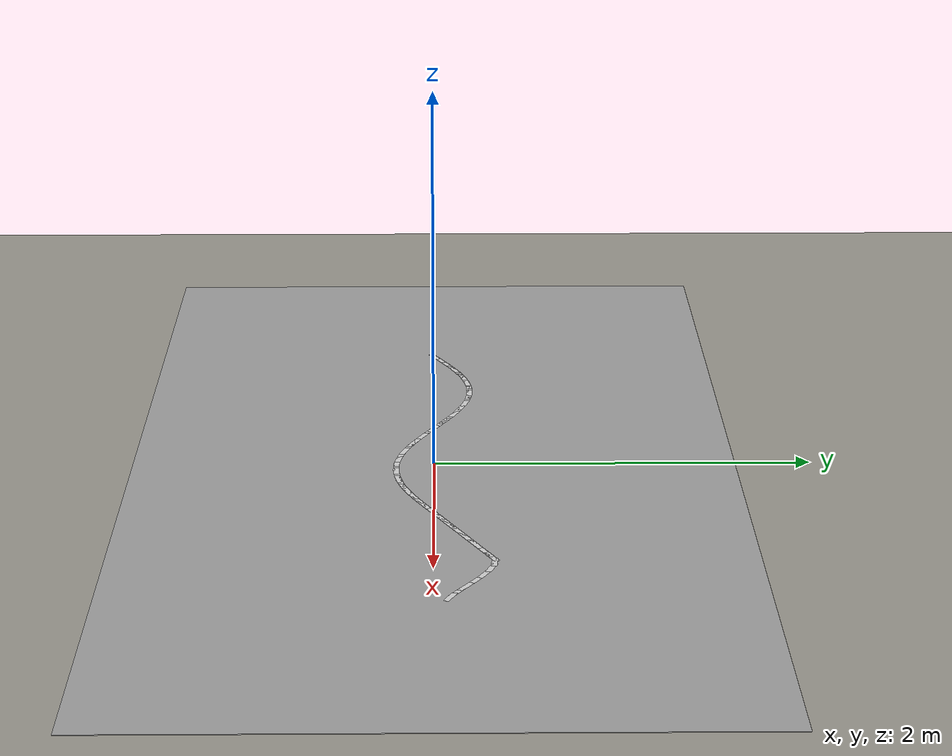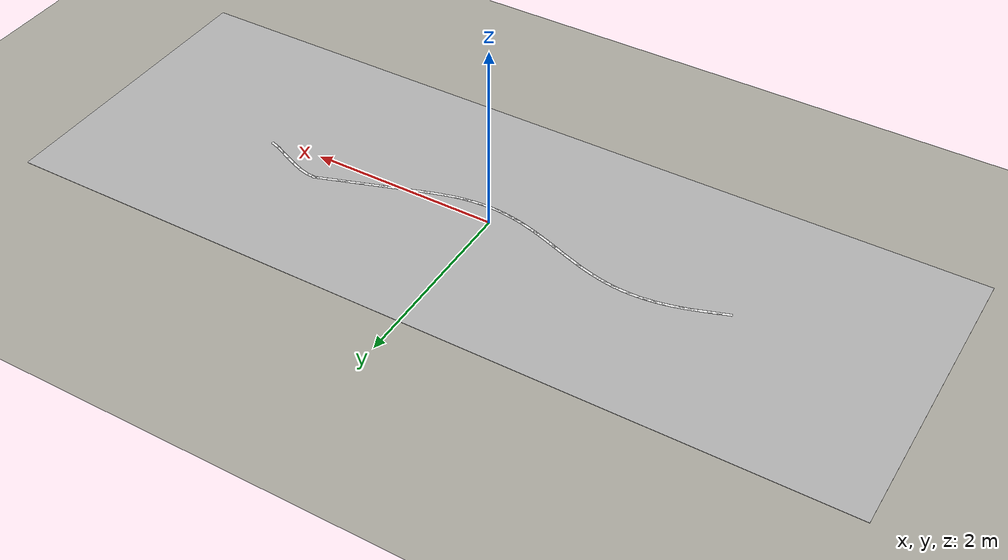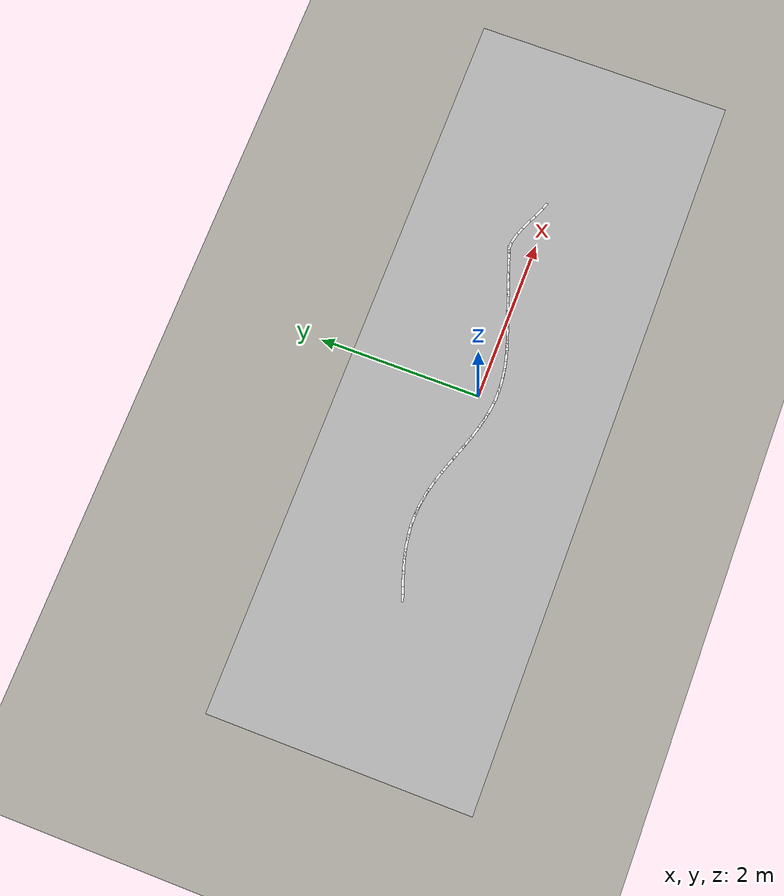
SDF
<?xml version="1.0" ?>
<sdf version="1.6">
  <world name="seam_world_texture_half_width_mid_straight">
    <gravity>0 0 -9.8</gravity>

    <physics name="default_physics" type="ode">
      <max_step_size>0.001</max_step_size>
      <real_time_factor>1.0</real_time_factor>
      <real_time_update_rate>1000</real_time_update_rate>
    </physics>

    <scene>
      <ambient>0.62 0.62 0.60 1</ambient>
      <background>0.72 0.72 0.72 1</background>
      <shadows>true</shadows>
    </scene>

    <light name="main_light" type="directional">
      <cast_shadows>true</cast_shadows>
      <pose>0 0 8 0 0 0</pose>
      <diffuse>0.86 0.86 0.82 1</diffuse>
      <specular>0.16 0.16 0.16 1</specular>
      <direction>-0.35 0.18 -0.92</direction>
    </light>

    <model name="ground_plane">
      <static>true</static>
      <link name="ground_link">
        <collision name="ground_collision">
          <geometry>
            <plane>
              <normal>0 0 1</normal>
              <size>20 20</size>
            </plane>
          </geometry>
          <surface>
            <friction>
              <ode>
                <mu>100</mu>
                <mu2>100</mu2>
              </ode>
            </friction>
          </surface>
        </collision>
        <visual name="ground_visual">
          <geometry>
            <plane>
              <normal>0 0 1</normal>
              <size>20 20</size>
            </plane>
          </geometry>
          <material>
            <ambient>0.73 0.72 0.68 1</ambient>
            <diffuse>0.73 0.72 0.68 1</diffuse>
            <specular>0.04 0.04 0.04 1</specular>
          </material>
        </visual>
      </link>
    </model>

    <model name="seam_background_surface">
      <static>true</static>
      <link name="bg_surface_link">
        <visual name="bg_clean_surface_visual">
          <pose>0 0 0.002 0 0 0</pose>
          <cast_shadows>false</cast_shadows>
          <geometry>
            <plane>
              <normal>0 0 1</normal>
              <size>9.0 3.2</size>
            </plane>
          </geometry>
          <material>
            <script>
              <uri>file:///home/bn/bsnew/catkin_ws/src/nanoomni_description/materials/scripts/seam_video.material</uri>
              <uri>file:///home/bn/bsnew/catkin_ws/src/nanoomni_description/materials/textures</uri>
              <name>NanoOmni/CleanBackgroundSurface</name>
            </script>
            <ambient>0.76 0.76 0.76 1</ambient>
            <diffuse>0.76 0.76 0.76 1</diffuse>
            <specular>0.015 0.015 0.015 1</specular>
          </material>
        </visual>
      </link>
    </model>

    <model name="mid_straight_weld_texture_path">
      <static>true</static>
      <link name="curve_visual_link">
        <visual name="weld_curve_segment_00">
          <pose>-2.500 0.000 0.004 0 0 0.346</pose>
          <cast_shadows>false</cast_shadows>
          <geometry>
            <plane>
              <normal>0 0 1</normal>
              <size>0.14 0.03</size>
            </plane>
          </geometry>
          <material>
            <script>
              <uri>file:///home/bn/bsnew/catkin_ws/src/nanoomni_description/materials/scripts/seam_video.material</uri>
              <uri>file:///home/bn/bsnew/catkin_ws/src/nanoomni_description/materials/textures</uri>
              <name>NanoOmni/SeamCurvePatch01</name>
            </script>
            <ambient>1 1 1 1</ambient>
            <diffuse>1 1 1 1</diffuse>
            <specular>0.05 0.05 0.05 1</specular>
          </material>
        </visual>
        <visual name="weld_curve_segment_01">
          <pose>-2.417 0.030 0.004 0 0 0.342</pose>
          <cast_shadows>false</cast_shadows>
          <geometry>
            <plane>
              <normal>0 0 1</normal>
              <size>0.14 0.03</size>
            </plane>
          </geometry>
          <material>
            <script>
              <uri>file:///home/bn/bsnew/catkin_ws/src/nanoomni_description/materials/scripts/seam_video.material</uri>
              <uri>file:///home/bn/bsnew/catkin_ws/src/nanoomni_description/materials/textures</uri>
              <name>NanoOmni/SeamCurvePatch02</name>
            </script>
            <ambient>1 1 1 1</ambient>
            <diffuse>1 1 1 1</diffuse>
            <specular>0.05 0.05 0.05 1</specular>
          </material>
        </visual>
        <visual name="weld_curve_segment_02">
          <pose>-2.333 0.059 0.004 0 0 0.331</pose>
          <cast_shadows>false</cast_shadows>
          <geometry>
            <plane>
              <normal>0 0 1</normal>
              <size>0.14 0.03</size>
            </plane>
          </geometry>
          <material>
            <script>
              <uri>file:///home/bn/bsnew/catkin_ws/src/nanoomni_description/materials/scripts/seam_video.material</uri>
              <uri>file:///home/bn/bsnew/catkin_ws/src/nanoomni_description/materials/textures</uri>
              <name>NanoOmni/SeamCurvePatch03</name>
            </script>
            <ambient>1 1 1 1</ambient>
            <diffuse>1 1 1 1</diffuse>
            <specular>0.05 0.05 0.05 1</specular>
          </material>
        </visual>
        <visual name="weld_curve_segment_03">
          <pose>-2.250 0.087 0.004 0 0 0.313</pose>
          <cast_shadows>false</cast_shadows>
          <geometry>
            <plane>
              <normal>0 0 1</normal>
              <size>0.14 0.03</size>
            </plane>
          </geometry>
          <material>
            <script>
              <uri>file:///home/bn/bsnew/catkin_ws/src/nanoomni_description/materials/scripts/seam_video.material</uri>
              <uri>file:///home/bn/bsnew/catkin_ws/src/nanoomni_description/materials/textures</uri>
              <name>NanoOmni/SeamCurvePatch04</name>
            </script>
            <ambient>1 1 1 1</ambient>
            <diffuse>1 1 1 1</diffuse>
            <specular>0.05 0.05 0.05 1</specular>
          </material>
        </visual>
        <visual name="weld_curve_segment_04">
          <pose>-2.167 0.113 0.004 0 0 0.289</pose>
          <cast_shadows>false</cast_shadows>
          <geometry>
            <plane>
              <normal>0 0 1</normal>
              <size>0.14 0.03</size>
            </plane>
          </geometry>
          <material>
            <script>
              <uri>file:///home/bn/bsnew/catkin_ws/src/nanoomni_description/materials/scripts/seam_video.material</uri>
              <uri>file:///home/bn/bsnew/catkin_ws/src/nanoomni_description/materials/textures</uri>
              <name>NanoOmni/SeamCurvePatch05</name>
            </script>
            <ambient>1 1 1 1</ambient>
            <diffuse>1 1 1 1</diffuse>
            <specular>0.05 0.05 0.05 1</specular>
          </material>
        </visual>
        <visual name="weld_curve_segment_05">
          <pose>-2.083 0.136 0.004 0 0 0.258</pose>
          <cast_shadows>false</cast_shadows>
          <geometry>
            <plane>
              <normal>0 0 1</normal>
              <size>0.14 0.03</size>
            </plane>
          </geometry>
          <material>
            <script>
              <uri>file:///home/bn/bsnew/catkin_ws/src/nanoomni_description/materials/scripts/seam_video.material</uri>
              <uri>file:///home/bn/bsnew/catkin_ws/src/nanoomni_description/materials/textures</uri>
              <name>NanoOmni/SeamCurvePatch06</name>
            </script>
            <ambient>1 1 1 1</ambient>
            <diffuse>1 1 1 1</diffuse>
            <specular>0.05 0.05 0.05 1</specular>
          </material>
        </visual>
        <visual name="weld_curve_segment_06">
          <pose>-2.000 0.157 0.004 0 0 0.220</pose>
          <cast_shadows>false</cast_shadows>
          <geometry>
            <plane>
              <normal>0 0 1</normal>
              <size>0.14 0.03</size>
            </plane>
          </geometry>
          <material>
            <script>
              <uri>file:///home/bn/bsnew/catkin_ws/src/nanoomni_description/materials/scripts/seam_video.material</uri>
              <uri>file:///home/bn/bsnew/catkin_ws/src/nanoomni_description/materials/textures</uri>
              <name>NanoOmni/SeamCurvePatch07</name>
            </script>
            <ambient>1 1 1 1</ambient>
            <diffuse>1 1 1 1</diffuse>
            <specular>0.05 0.05 0.05 1</specular>
          </material>
        </visual>
        <visual name="weld_curve_segment_07">
          <pose>-1.917 0.173 0.004 0 0 0.177</pose>
          <cast_shadows>false</cast_shadows>
          <geometry>
            <plane>
              <normal>0 0 1</normal>
              <size>0.14 0.03</size>
            </plane>
          </geometry>
          <material>
            <script>
              <uri>file:///home/bn/bsnew/catkin_ws/src/nanoomni_description/materials/scripts/seam_video.material</uri>
              <uri>file:///home/bn/bsnew/catkin_ws/src/nanoomni_description/materials/textures</uri>
              <name>NanoOmni/SeamCurvePatch08</name>
            </script>
            <ambient>1 1 1 1</ambient>
            <diffuse>1 1 1 1</diffuse>
            <specular>0.05 0.05 0.05 1</specular>
          </material>
        </visual>
        <visual name="weld_curve_segment_08">
          <pose>-1.833 0.186 0.004 0 0 0.130</pose>
          <cast_shadows>false</cast_shadows>
          <geometry>
            <plane>
              <normal>0 0 1</normal>
              <size>0.14 0.03</size>
            </plane>
          </geometry>
          <material>
            <script>
              <uri>file:///home/bn/bsnew/catkin_ws/src/nanoomni_description/materials/scripts/seam_video.material</uri>
              <uri>file:///home/bn/bsnew/catkin_ws/src/nanoomni_description/materials/textures</uri>
              <name>NanoOmni/SeamCurvePatch09</name>
            </script>
            <ambient>1 1 1 1</ambient>
            <diffuse>1 1 1 1</diffuse>
            <specular>0.05 0.05 0.05 1</specular>
          </material>
        </visual>
        <visual name="weld_curve_segment_09">
          <pose>-1.750 0.195 0.004 0 0 0.079</pose>
          <cast_shadows>false</cast_shadows>
          <geometry>
            <plane>
              <normal>0 0 1</normal>
              <size>0.14 0.03</size>
            </plane>
          </geometry>
          <material>
            <script>
              <uri>file:///home/bn/bsnew/catkin_ws/src/nanoomni_description/materials/scripts/seam_video.material</uri>
              <uri>file:///home/bn/bsnew/catkin_ws/src/nanoomni_description/materials/textures</uri>
              <name>NanoOmni/SeamCurvePatch10</name>
            </script>
            <ambient>1 1 1 1</ambient>
            <diffuse>1 1 1 1</diffuse>
            <specular>0.05 0.05 0.05 1</specular>
          </material>
        </visual>
        <visual name="weld_curve_segment_10">
          <pose>-1.667 0.199 0.004 0 0 0.025</pose>
          <cast_shadows>false</cast_shadows>
          <geometry>
            <plane>
              <normal>0 0 1</normal>
              <size>0.14 0.03</size>
            </plane>
          </geometry>
          <material>
            <script>
              <uri>file:///home/bn/bsnew/catkin_ws/src/nanoomni_description/materials/scripts/seam_video.material</uri>
              <uri>file:///home/bn/bsnew/catkin_ws/src/nanoomni_description/materials/textures</uri>
              <name>NanoOmni/SeamCurvePatch11</name>
            </script>
            <ambient>1 1 1 1</ambient>
            <diffuse>1 1 1 1</diffuse>
            <specular>0.05 0.05 0.05 1</specular>
          </material>
        </visual>
        <visual name="weld_curve_segment_11">
          <pose>-1.583 0.199 0.004 0 0 -0.028</pose>
          <cast_shadows>false</cast_shadows>
          <geometry>
            <plane>
              <normal>0 0 1</normal>
              <size>0.14 0.03</size>
            </plane>
          </geometry>
          <material>
            <script>
              <uri>file:///home/bn/bsnew/catkin_ws/src/nanoomni_description/materials/scripts/seam_video.material</uri>
              <uri>file:///home/bn/bsnew/catkin_ws/src/nanoomni_description/materials/textures</uri>
              <name>NanoOmni/SeamCurvePatch01</name>
            </script>
            <ambient>1 1 1 1</ambient>
            <diffuse>1 1 1 1</diffuse>
            <specular>0.05 0.05 0.05 1</specular>
          </material>
        </visual>
        <visual name="weld_curve_segment_12">
          <pose>-1.500 0.195 0.004 0 0 -0.082</pose>
          <cast_shadows>false</cast_shadows>
          <geometry>
            <plane>
              <normal>0 0 1</normal>
              <size>0.14 0.03</size>
            </plane>
          </geometry>
          <material>
            <script>
              <uri>file:///home/bn/bsnew/catkin_ws/src/nanoomni_description/materials/scripts/seam_video.material</uri>
              <uri>file:///home/bn/bsnew/catkin_ws/src/nanoomni_description/materials/textures</uri>
              <name>NanoOmni/SeamCurvePatch02</name>
            </script>
            <ambient>1 1 1 1</ambient>
            <diffuse>1 1 1 1</diffuse>
            <specular>0.05 0.05 0.05 1</specular>
          </material>
        </visual>
        <visual name="weld_curve_segment_13">
          <pose>-1.417 0.186 0.004 0 0 -0.132</pose>
          <cast_shadows>false</cast_shadows>
          <geometry>
            <plane>
              <normal>0 0 1</normal>
              <size>0.14 0.03</size>
            </plane>
          </geometry>
          <material>
            <script>
              <uri>file:///home/bn/bsnew/catkin_ws/src/nanoomni_description/materials/scripts/seam_video.material</uri>
              <uri>file:///home/bn/bsnew/catkin_ws/src/nanoomni_description/materials/textures</uri>
              <name>NanoOmni/SeamCurvePatch03</name>
            </script>
            <ambient>1 1 1 1</ambient>
            <diffuse>1 1 1 1</diffuse>
            <specular>0.05 0.05 0.05 1</specular>
          </material>
        </visual>
        <visual name="weld_curve_segment_14">
          <pose>-1.333 0.173 0.004 0 0 -0.180</pose>
          <cast_shadows>false</cast_shadows>
          <geometry>
            <plane>
              <normal>0 0 1</normal>
              <size>0.14 0.03</size>
            </plane>
          </geometry>
          <material>
            <script>
              <uri>file:///home/bn/bsnew/catkin_ws/src/nanoomni_description/materials/scripts/seam_video.material</uri>
              <uri>file:///home/bn/bsnew/catkin_ws/src/nanoomni_description/materials/textures</uri>
              <name>NanoOmni/SeamCurvePatch04</name>
            </script>
            <ambient>1 1 1 1</ambient>
            <diffuse>1 1 1 1</diffuse>
            <specular>0.05 0.05 0.05 1</specular>
          </material>
        </visual>
        <visual name="weld_curve_segment_15">
          <pose>-1.250 0.156 0.004 0 0 -0.222</pose>
          <cast_shadows>false</cast_shadows>
          <geometry>
            <plane>
              <normal>0 0 1</normal>
              <size>0.14 0.03</size>
            </plane>
          </geometry>
          <material>
            <script>
              <uri>file:///home/bn/bsnew/catkin_ws/src/nanoomni_description/materials/scripts/seam_video.material</uri>
              <uri>file:///home/bn/bsnew/catkin_ws/src/nanoomni_description/materials/textures</uri>
              <name>NanoOmni/SeamCurvePatch05</name>
            </script>
            <ambient>1 1 1 1</ambient>
            <diffuse>1 1 1 1</diffuse>
            <specular>0.05 0.05 0.05 1</specular>
          </material>
        </visual>
        <visual name="weld_curve_segment_16">
          <pose>-1.167 0.135 0.004 0 0 -0.259</pose>
          <cast_shadows>false</cast_shadows>
          <geometry>
            <plane>
              <normal>0 0 1</normal>
              <size>0.14 0.03</size>
            </plane>
          </geometry>
          <material>
            <script>
              <uri>file:///home/bn/bsnew/catkin_ws/src/nanoomni_description/materials/scripts/seam_video.material</uri>
              <uri>file:///home/bn/bsnew/catkin_ws/src/nanoomni_description/materials/textures</uri>
              <name>NanoOmni/SeamCurvePatch06</name>
            </script>
            <ambient>1 1 1 1</ambient>
            <diffuse>1 1 1 1</diffuse>
            <specular>0.05 0.05 0.05 1</specular>
          </material>
        </visual>
        <visual name="weld_curve_segment_17">
          <pose>-1.083 0.112 0.004 0 0 -0.290</pose>
          <cast_shadows>false</cast_shadows>
          <geometry>
            <plane>
              <normal>0 0 1</normal>
              <size>0.14 0.03</size>
            </plane>
          </geometry>
          <material>
            <script>
              <uri>file:///home/bn/bsnew/catkin_ws/src/nanoomni_description/materials/scripts/seam_video.material</uri>
              <uri>file:///home/bn/bsnew/catkin_ws/src/nanoomni_description/materials/textures</uri>
              <name>NanoOmni/SeamCurvePatch07</name>
            </script>
            <ambient>1 1 1 1</ambient>
            <diffuse>1 1 1 1</diffuse>
            <specular>0.05 0.05 0.05 1</specular>
          </material>
        </visual>
        <visual name="weld_curve_segment_18">
          <pose>-1.000 0.085 0.004 0 0 -0.315</pose>
          <cast_shadows>false</cast_shadows>
          <geometry>
            <plane>
              <normal>0 0 1</normal>
              <size>0.14 0.03</size>
            </plane>
          </geometry>
          <material>
            <script>
              <uri>file:///home/bn/bsnew/catkin_ws/src/nanoomni_description/materials/scripts/seam_video.material</uri>
              <uri>file:///home/bn/bsnew/catkin_ws/src/nanoomni_description/materials/textures</uri>
              <name>NanoOmni/SeamCurvePatch08</name>
            </script>
            <ambient>1 1 1 1</ambient>
            <diffuse>1 1 1 1</diffuse>
            <specular>0.05 0.05 0.05 1</specular>
          </material>
        </visual>
        <visual name="weld_curve_segment_19">
          <pose>-0.917 0.057 0.004 0 0 -0.332</pose>
          <cast_shadows>false</cast_shadows>
          <geometry>
            <plane>
              <normal>0 0 1</normal>
              <size>0.14 0.03</size>
            </plane>
          </geometry>
          <material>
            <script>
              <uri>file:///home/bn/bsnew/catkin_ws/src/nanoomni_description/materials/scripts/seam_video.material</uri>
              <uri>file:///home/bn/bsnew/catkin_ws/src/nanoomni_description/materials/textures</uri>
              <name>NanoOmni/SeamCurvePatch09</name>
            </script>
            <ambient>1 1 1 1</ambient>
            <diffuse>1 1 1 1</diffuse>
            <specular>0.05 0.05 0.05 1</specular>
          </material>
        </visual>
        <visual name="weld_curve_segment_20">
          <pose>-0.833 0.028 0.004 0 0 -0.342</pose>
          <cast_shadows>false</cast_shadows>
          <geometry>
            <plane>
              <normal>0 0 1</normal>
              <size>0.14 0.03</size>
            </plane>
          </geometry>
          <material>
            <script>
              <uri>file:///home/bn/bsnew/catkin_ws/src/nanoomni_description/materials/scripts/seam_video.material</uri>
              <uri>file:///home/bn/bsnew/catkin_ws/src/nanoomni_description/materials/textures</uri>
              <name>NanoOmni/SeamCurvePatch10</name>
            </script>
            <ambient>1 1 1 1</ambient>
            <diffuse>1 1 1 1</diffuse>
            <specular>0.05 0.05 0.05 1</specular>
          </material>
        </visual>
        <visual name="weld_curve_segment_21">
          <pose>-0.750 -0.002 0.004 0 0 -0.346</pose>
          <cast_shadows>false</cast_shadows>
          <geometry>
            <plane>
              <normal>0 0 1</normal>
              <size>0.14 0.03</size>
            </plane>
          </geometry>
          <material>
            <script>
              <uri>file:///home/bn/bsnew/catkin_ws/src/nanoomni_description/materials/scripts/seam_video.material</uri>
              <uri>file:///home/bn/bsnew/catkin_ws/src/nanoomni_description/materials/textures</uri>
              <name>NanoOmni/SeamCurvePatch11</name>
            </script>
            <ambient>1 1 1 1</ambient>
            <diffuse>1 1 1 1</diffuse>
            <specular>0.05 0.05 0.05 1</specular>
          </material>
        </visual>
        <visual name="weld_curve_segment_22">
          <pose>-0.667 -0.032 0.004 0 0 -0.342</pose>
          <cast_shadows>false</cast_shadows>
          <geometry>
            <plane>
              <normal>0 0 1</normal>
              <size>0.14 0.03</size>
            </plane>
          </geometry>
          <material>
            <script>
              <uri>file:///home/bn/bsnew/catkin_ws/src/nanoomni_description/materials/scripts/seam_video.material</uri>
              <uri>file:///home/bn/bsnew/catkin_ws/src/nanoomni_description/materials/textures</uri>
              <name>NanoOmni/SeamCurvePatch01</name>
            </script>
            <ambient>1 1 1 1</ambient>
            <diffuse>1 1 1 1</diffuse>
            <specular>0.05 0.05 0.05 1</specular>
          </material>
        </visual>
        <visual name="weld_curve_segment_23">
          <pose>-0.583 -0.061 0.004 0 0 -0.330</pose>
          <cast_shadows>false</cast_shadows>
          <geometry>
            <plane>
              <normal>0 0 1</normal>
              <size>0.14 0.03</size>
            </plane>
          </geometry>
          <material>
            <script>
              <uri>file:///home/bn/bsnew/catkin_ws/src/nanoomni_description/materials/scripts/seam_video.material</uri>
              <uri>file:///home/bn/bsnew/catkin_ws/src/nanoomni_description/materials/textures</uri>
              <name>NanoOmni/SeamCurvePatch02</name>
            </script>
            <ambient>1 1 1 1</ambient>
            <diffuse>1 1 1 1</diffuse>
            <specular>0.05 0.05 0.05 1</specular>
          </material>
        </visual>
        <visual name="weld_curve_segment_24">
          <pose>-0.500 -0.089 0.004 0 0 -0.312</pose>
          <cast_shadows>false</cast_shadows>
          <geometry>
            <plane>
              <normal>0 0 1</normal>
              <size>0.14 0.03</size>
            </plane>
          </geometry>
          <material>
            <script>
              <uri>file:///home/bn/bsnew/catkin_ws/src/nanoomni_description/materials/scripts/seam_video.material</uri>
              <uri>file:///home/bn/bsnew/catkin_ws/src/nanoomni_description/materials/textures</uri>
              <name>NanoOmni/SeamCurvePatch03</name>
            </script>
            <ambient>1 1 1 1</ambient>
            <diffuse>1 1 1 1</diffuse>
            <specular>0.05 0.05 0.05 1</specular>
          </material>
        </visual>
        <visual name="weld_curve_segment_25">
          <pose>-0.417 -0.114 0.004 0 0 -0.287</pose>
          <cast_shadows>false</cast_shadows>
          <geometry>
            <plane>
              <normal>0 0 1</normal>
              <size>0.14 0.03</size>
            </plane>
          </geometry>
          <material>
            <script>
              <uri>file:///home/bn/bsnew/catkin_ws/src/nanoomni_description/materials/scripts/seam_video.material</uri>
              <uri>file:///home/bn/bsnew/catkin_ws/src/nanoomni_description/materials/textures</uri>
              <name>NanoOmni/SeamCurvePatch04</name>
            </script>
            <ambient>1 1 1 1</ambient>
            <diffuse>1 1 1 1</diffuse>
            <specular>0.05 0.05 0.05 1</specular>
          </material>
        </visual>
        <visual name="weld_curve_segment_26">
          <pose>-0.333 -0.138 0.004 0 0 -0.256</pose>
          <cast_shadows>false</cast_shadows>
          <geometry>
            <plane>
              <normal>0 0 1</normal>
              <size>0.14 0.03</size>
            </plane>
          </geometry>
          <material>
            <script>
              <uri>file:///home/bn/bsnew/catkin_ws/src/nanoomni_description/materials/scripts/seam_video.material</uri>
              <uri>file:///home/bn/bsnew/catkin_ws/src/nanoomni_description/materials/textures</uri>
              <name>NanoOmni/SeamCurvePatch05</name>
            </script>
            <ambient>1 1 1 1</ambient>
            <diffuse>1 1 1 1</diffuse>
            <specular>0.05 0.05 0.05 1</specular>
          </material>
        </visual>
        <visual name="weld_curve_segment_27">
          <pose>-0.250 -0.158 0.004 0 0 -0.218</pose>
          <cast_shadows>false</cast_shadows>
          <geometry>
            <plane>
              <normal>0 0 1</normal>
              <size>0.14 0.03</size>
            </plane>
          </geometry>
          <material>
            <script>
              <uri>file:///home/bn/bsnew/catkin_ws/src/nanoomni_description/materials/scripts/seam_video.material</uri>
              <uri>file:///home/bn/bsnew/catkin_ws/src/nanoomni_description/materials/textures</uri>
              <name>NanoOmni/SeamCurvePatch06</name>
            </script>
            <ambient>1 1 1 1</ambient>
            <diffuse>1 1 1 1</diffuse>
            <specular>0.05 0.05 0.05 1</specular>
          </material>
        </visual>
        <visual name="weld_curve_segment_28">
          <pose>-0.167 -0.174 0.004 0 0 -0.175</pose>
          <cast_shadows>false</cast_shadows>
          <geometry>
            <plane>
              <normal>0 0 1</normal>
              <size>0.14 0.03</size>
            </plane>
          </geometry>
          <material>
            <script>
              <uri>file:///home/bn/bsnew/catkin_ws/src/nanoomni_description/materials/scripts/seam_video.material</uri>
              <uri>file:///home/bn/bsnew/catkin_ws/src/nanoomni_description/materials/textures</uri>
              <name>NanoOmni/SeamCurvePatch07</name>
            </script>
            <ambient>1 1 1 1</ambient>
            <diffuse>1 1 1 1</diffuse>
            <specular>0.05 0.05 0.05 1</specular>
          </material>
        </visual>
        <visual name="weld_curve_segment_29">
          <pose>-0.083 -0.187 0.004 0 0 -0.127</pose>
          <cast_shadows>false</cast_shadows>
          <geometry>
            <plane>
              <normal>0 0 1</normal>
              <size>0.14 0.03</size>
            </plane>
          </geometry>
          <material>
            <script>
              <uri>file:///home/bn/bsnew/catkin_ws/src/nanoomni_description/materials/scripts/seam_video.material</uri>
              <uri>file:///home/bn/bsnew/catkin_ws/src/nanoomni_description/materials/textures</uri>
              <name>NanoOmni/SeamCurvePatch08</name>
            </script>
            <ambient>1 1 1 1</ambient>
            <diffuse>1 1 1 1</diffuse>
            <specular>0.05 0.05 0.05 1</specular>
          </material>
        </visual>
        <visual name="weld_curve_segment_30">
          <pose>0.000 -0.196 0.004 0 0 -0.076</pose>
          <cast_shadows>false</cast_shadows>
          <geometry>
            <plane>
              <normal>0 0 1</normal>
              <size>0.14 0.03</size>
            </plane>
          </geometry>
          <material>
            <script>
              <uri>file:///home/bn/bsnew/catkin_ws/src/nanoomni_description/materials/scripts/seam_video.material</uri>
              <uri>file:///home/bn/bsnew/catkin_ws/src/nanoomni_description/materials/textures</uri>
              <name>NanoOmni/SeamCurvePatch09</name>
            </script>
            <ambient>1 1 1 1</ambient>
            <diffuse>1 1 1 1</diffuse>
            <specular>0.05 0.05 0.05 1</specular>
          </material>
        </visual>
        <visual name="weld_curve_segment_31">
          <pose>0.083 -0.200 0.004 0 0 -0.022</pose>
          <cast_shadows>false</cast_shadows>
          <geometry>
            <plane>
              <normal>0 0 1</normal>
              <size>0.14 0.03</size>
            </plane>
          </geometry>
          <material>
            <script>
              <uri>file:///home/bn/bsnew/catkin_ws/src/nanoomni_description/materials/scripts/seam_video.material</uri>
              <uri>file:///home/bn/bsnew/catkin_ws/src/nanoomni_description/materials/textures</uri>
              <name>NanoOmni/SeamCurvePatch10</name>
            </script>
            <ambient>1 1 1 1</ambient>
            <diffuse>1 1 1 1</diffuse>
            <specular>0.05 0.05 0.05 1</specular>
          </material>
        </visual>
        <visual name="weld_curve_segment_32">
          <pose>0.167 -0.199 0.004 0 0 0.031</pose>
          <cast_shadows>false</cast_shadows>
          <geometry>
            <plane>
              <normal>0 0 1</normal>
              <size>0.14 0.03</size>
            </plane>
          </geometry>
          <material>
            <script>
              <uri>file:///home/bn/bsnew/catkin_ws/src/nanoomni_description/materials/scripts/seam_video.material</uri>
              <uri>file:///home/bn/bsnew/catkin_ws/src/nanoomni_description/materials/textures</uri>
              <name>NanoOmni/SeamCurvePatch11</name>
            </script>
            <ambient>1 1 1 1</ambient>
            <diffuse>1 1 1 1</diffuse>
            <specular>0.05 0.05 0.05 1</specular>
          </material>
        </visual>
        <visual name="weld_curve_segment_33">
          <pose>0.250 -0.194 0.004 0 0 0.085</pose>
          <cast_shadows>false</cast_shadows>
          <geometry>
            <plane>
              <normal>0 0 1</normal>
              <size>0.14 0.03</size>
            </plane>
          </geometry>
          <material>
            <script>
              <uri>file:///home/bn/bsnew/catkin_ws/src/nanoomni_description/materials/scripts/seam_video.material</uri>
              <uri>file:///home/bn/bsnew/catkin_ws/src/nanoomni_description/materials/textures</uri>
              <name>NanoOmni/SeamCurvePatch01</name>
            </script>
            <ambient>1 1 1 1</ambient>
            <diffuse>1 1 1 1</diffuse>
            <specular>0.05 0.05 0.05 1</specular>
          </material>
        </visual>
        <visual name="weld_curve_segment_34">
          <pose>0.333 -0.185 0.004 0 0 0.135</pose>
          <cast_shadows>false</cast_shadows>
          <geometry>
            <plane>
              <normal>0 0 1</normal>
              <size>0.14 0.03</size>
            </plane>
          </geometry>
          <material>
            <script>
              <uri>file:///home/bn/bsnew/catkin_ws/src/nanoomni_description/materials/scripts/seam_video.material</uri>
              <uri>file:///home/bn/bsnew/catkin_ws/src/nanoomni_description/materials/textures</uri>
              <name>NanoOmni/SeamCurvePatch02</name>
            </script>
            <ambient>1 1 1 1</ambient>
            <diffuse>1 1 1 1</diffuse>
            <specular>0.05 0.05 0.05 1</specular>
          </material>
        </visual>
        <visual name="weld_curve_segment_35">
          <pose>0.417 -0.172 0.004 0 0 0.182</pose>
          <cast_shadows>false</cast_shadows>
          <geometry>
            <plane>
              <normal>0 0 1</normal>
              <size>0.14 0.03</size>
            </plane>
          </geometry>
          <material>
            <script>
              <uri>file:///home/bn/bsnew/catkin_ws/src/nanoomni_description/materials/scripts/seam_video.material</uri>
              <uri>file:///home/bn/bsnew/catkin_ws/src/nanoomni_description/materials/textures</uri>
              <name>NanoOmni/SeamCurvePatch03</name>
            </script>
            <ambient>1 1 1 1</ambient>
            <diffuse>1 1 1 1</diffuse>
            <specular>0.05 0.05 0.05 1</specular>
          </material>
        </visual>
        <visual name="weld_curve_segment_36">
          <pose>0.500 -0.155 0.004 0 0 0.225</pose>
          <cast_shadows>false</cast_shadows>
          <geometry>
            <plane>
              <normal>0 0 1</normal>
              <size>0.14 0.03</size>
            </plane>
          </geometry>
          <material>
            <script>
              <uri>file:///home/bn/bsnew/catkin_ws/src/nanoomni_description/materials/scripts/seam_video.material</uri>
              <uri>file:///home/bn/bsnew/catkin_ws/src/nanoomni_description/materials/textures</uri>
              <name>NanoOmni/SeamCurvePatch04</name>
            </script>
            <ambient>1 1 1 1</ambient>
            <diffuse>1 1 1 1</diffuse>
            <specular>0.05 0.05 0.05 1</specular>
          </material>
        </visual>
        <visual name="weld_curve_segment_37">
          <pose>0.583 -0.134 0.004 0 0 0.261</pose>
          <cast_shadows>false</cast_shadows>
          <geometry>
            <plane>
              <normal>0 0 1</normal>
              <size>0.14 0.03</size>
            </plane>
          </geometry>
          <material>
            <script>
              <uri>file:///home/bn/bsnew/catkin_ws/src/nanoomni_description/materials/scripts/seam_video.material</uri>
              <uri>file:///home/bn/bsnew/catkin_ws/src/nanoomni_description/materials/textures</uri>
              <name>NanoOmni/SeamCurvePatch05</name>
            </script>
            <ambient>1 1 1 1</ambient>
            <diffuse>1 1 1 1</diffuse>
            <specular>0.05 0.05 0.05 1</specular>
          </material>
        </visual>
        <visual name="weld_curve_segment_38">
          <pose>0.667 -0.110 0.004 0 0 0.292</pose>
          <cast_shadows>false</cast_shadows>
          <geometry>
            <plane>
              <normal>0 0 1</normal>
              <size>0.14 0.03</size>
            </plane>
          </geometry>
          <material>
            <script>
              <uri>file:///home/bn/bsnew/catkin_ws/src/nanoomni_description/materials/scripts/seam_video.material</uri>
              <uri>file:///home/bn/bsnew/catkin_ws/src/nanoomni_description/materials/textures</uri>
              <name>NanoOmni/SeamCurvePatch06</name>
            </script>
            <ambient>1 1 1 1</ambient>
            <diffuse>1 1 1 1</diffuse>
            <specular>0.05 0.05 0.05 1</specular>
          </material>
        </visual>
        <visual name="weld_curve_segment_39">
          <pose>0.750 -0.084 0.004 0 0 0.316</pose>
          <cast_shadows>false</cast_shadows>
          <geometry>
            <plane>
              <normal>0 0 1</normal>
              <size>0.14 0.03</size>
            </plane>
          </geometry>
          <material>
            <script>
              <uri>file:///home/bn/bsnew/catkin_ws/src/nanoomni_description/materials/scripts/seam_video.material</uri>
              <uri>file:///home/bn/bsnew/catkin_ws/src/nanoomni_description/materials/textures</uri>
              <name>NanoOmni/SeamCurvePatch07</name>
            </script>
            <ambient>1 1 1 1</ambient>
            <diffuse>1 1 1 1</diffuse>
            <specular>0.05 0.05 0.05 1</specular>
          </material>
        </visual>
        <visual name="weld_curve_segment_40">
          <pose>0.833 -0.056 0.004 0 0 0.333</pose>
          <cast_shadows>false</cast_shadows>
          <geometry>
            <plane>
              <normal>0 0 1</normal>
              <size>0.14 0.03</size>
            </plane>
          </geometry>
          <material>
            <script>
              <uri>file:///home/bn/bsnew/catkin_ws/src/nanoomni_description/materials/scripts/seam_video.material</uri>
              <uri>file:///home/bn/bsnew/catkin_ws/src/nanoomni_description/materials/textures</uri>
              <name>NanoOmni/SeamCurvePatch08</name>
            </script>
            <ambient>1 1 1 1</ambient>
            <diffuse>1 1 1 1</diffuse>
            <specular>0.05 0.05 0.05 1</specular>
          </material>
        </visual>
        <visual name="weld_curve_segment_41">
          <pose>0.909 -0.030 0.004 0 0 0.333</pose>
          <cast_shadows>false</cast_shadows>
          <geometry>
            <plane>
              <normal>0 0 1</normal>
              <size>0.14 0.03</size>
            </plane>
          </geometry>
          <material>
            <script>
              <uri>file:///home/bn/bsnew/catkin_ws/src/nanoomni_description/materials/scripts/seam_video.material</uri>
              <uri>file:///home/bn/bsnew/catkin_ws/src/nanoomni_description/materials/textures</uri>
              <name>NanoOmni/SeamCurvePatch09</name>
            </script>
            <ambient>1 1 1 1</ambient>
            <diffuse>1 1 1 1</diffuse>
            <specular>0.05 0.05 0.05 1</specular>
          </material>
        </visual>
        <visual name="weld_curve_segment_42">
          <pose>0.986 -0.003 0.004 0 0 0.333</pose>
          <cast_shadows>false</cast_shadows>
          <geometry>
            <plane>
              <normal>0 0 1</normal>
              <size>0.14 0.03</size>
            </plane>
          </geometry>
          <material>
            <script>
              <uri>file:///home/bn/bsnew/catkin_ws/src/nanoomni_description/materials/scripts/seam_video.material</uri>
              <uri>file:///home/bn/bsnew/catkin_ws/src/nanoomni_description/materials/textures</uri>
              <name>NanoOmni/SeamCurvePatch10</name>
            </script>
            <ambient>1 1 1 1</ambient>
            <diffuse>1 1 1 1</diffuse>
            <specular>0.05 0.05 0.05 1</specular>
          </material>
        </visual>
        <visual name="weld_curve_segment_43">
          <pose>1.062 0.023 0.004 0 0 0.333</pose>
          <cast_shadows>false</cast_shadows>
          <geometry>
            <plane>
              <normal>0 0 1</normal>
              <size>0.14 0.03</size>
            </plane>
          </geometry>
          <material>
            <script>
              <uri>file:///home/bn/bsnew/catkin_ws/src/nanoomni_description/materials/scripts/seam_video.material</uri>
              <uri>file:///home/bn/bsnew/catkin_ws/src/nanoomni_description/materials/textures</uri>
              <name>NanoOmni/SeamCurvePatch11</name>
            </script>
            <ambient>1 1 1 1</ambient>
            <diffuse>1 1 1 1</diffuse>
            <specular>0.05 0.05 0.05 1</specular>
          </material>
        </visual>
        <visual name="weld_curve_segment_44">
          <pose>1.138 0.050 0.004 0 0 0.333</pose>
          <cast_shadows>false</cast_shadows>
          <geometry>
            <plane>
              <normal>0 0 1</normal>
              <size>0.14 0.03</size>
            </plane>
          </geometry>
          <material>
            <script>
              <uri>file:///home/bn/bsnew/catkin_ws/src/nanoomni_description/materials/scripts/seam_video.material</uri>
              <uri>file:///home/bn/bsnew/catkin_ws/src/nanoomni_description/materials/textures</uri>
              <name>NanoOmni/SeamCurvePatch01</name>
            </script>
            <ambient>1 1 1 1</ambient>
            <diffuse>1 1 1 1</diffuse>
            <specular>0.05 0.05 0.05 1</specular>
          </material>
        </visual>
        <visual name="weld_curve_segment_45">
          <pose>1.215 0.076 0.004 0 0 0.333</pose>
          <cast_shadows>false</cast_shadows>
          <geometry>
            <plane>
              <normal>0 0 1</normal>
              <size>0.14 0.03</size>
            </plane>
          </geometry>
          <material>
            <script>
              <uri>file:///home/bn/bsnew/catkin_ws/src/nanoomni_description/materials/scripts/seam_video.material</uri>
              <uri>file:///home/bn/bsnew/catkin_ws/src/nanoomni_description/materials/textures</uri>
              <name>NanoOmni/SeamCurvePatch02</name>
            </script>
            <ambient>1 1 1 1</ambient>
            <diffuse>1 1 1 1</diffuse>
            <specular>0.05 0.05 0.05 1</specular>
          </material>
        </visual>
        <visual name="weld_curve_segment_46">
          <pose>1.291 0.102 0.004 0 0 0.333</pose>
          <cast_shadows>false</cast_shadows>
          <geometry>
            <plane>
              <normal>0 0 1</normal>
              <size>0.14 0.03</size>
            </plane>
          </geometry>
          <material>
            <script>
              <uri>file:///home/bn/bsnew/catkin_ws/src/nanoomni_description/materials/scripts/seam_video.material</uri>
              <uri>file:///home/bn/bsnew/catkin_ws/src/nanoomni_description/materials/textures</uri>
              <name>NanoOmni/SeamCurvePatch03</name>
            </script>
            <ambient>1 1 1 1</ambient>
            <diffuse>1 1 1 1</diffuse>
            <specular>0.05 0.05 0.05 1</specular>
          </material>
        </visual>
        <visual name="weld_curve_segment_47">
          <pose>1.367 0.129 0.004 0 0 0.333</pose>
          <cast_shadows>false</cast_shadows>
          <geometry>
            <plane>
              <normal>0 0 1</normal>
              <size>0.14 0.03</size>
            </plane>
          </geometry>
          <material>
            <script>
              <uri>file:///home/bn/bsnew/catkin_ws/src/nanoomni_description/materials/scripts/seam_video.material</uri>
              <uri>file:///home/bn/bsnew/catkin_ws/src/nanoomni_description/materials/textures</uri>
              <name>NanoOmni/SeamCurvePatch04</name>
            </script>
            <ambient>1 1 1 1</ambient>
            <diffuse>1 1 1 1</diffuse>
            <specular>0.05 0.05 0.05 1</specular>
          </material>
        </visual>
        <visual name="weld_curve_segment_48">
          <pose>1.444 0.155 0.004 0 0 0.333</pose>
          <cast_shadows>false</cast_shadows>
          <geometry>
            <plane>
              <normal>0 0 1</normal>
              <size>0.14 0.03</size>
            </plane>
          </geometry>
          <material>
            <script>
              <uri>file:///home/bn/bsnew/catkin_ws/src/nanoomni_description/materials/scripts/seam_video.material</uri>
              <uri>file:///home/bn/bsnew/catkin_ws/src/nanoomni_description/materials/textures</uri>
              <name>NanoOmni/SeamCurvePatch05</name>
            </script>
            <ambient>1 1 1 1</ambient>
            <diffuse>1 1 1 1</diffuse>
            <specular>0.05 0.05 0.05 1</specular>
          </material>
        </visual>
        <visual name="weld_curve_segment_49">
          <pose>1.520 0.182 0.004 0 0 0.333</pose>
          <cast_shadows>false</cast_shadows>
          <geometry>
            <plane>
              <normal>0 0 1</normal>
              <size>0.14 0.03</size>
            </plane>
          </geometry>
          <material>
            <script>
              <uri>file:///home/bn/bsnew/catkin_ws/src/nanoomni_description/materials/scripts/seam_video.material</uri>
              <uri>file:///home/bn/bsnew/catkin_ws/src/nanoomni_description/materials/textures</uri>
              <name>NanoOmni/SeamCurvePatch06</name>
            </script>
            <ambient>1 1 1 1</ambient>
            <diffuse>1 1 1 1</diffuse>
            <specular>0.05 0.05 0.05 1</specular>
          </material>
        </visual>
        <visual name="weld_curve_segment_50">
          <pose>1.596 0.208 0.004 0 0 0.333</pose>
          <cast_shadows>false</cast_shadows>
          <geometry>
            <plane>
              <normal>0 0 1</normal>
              <size>0.14 0.03</size>
            </plane>
          </geometry>
          <material>
            <script>
              <uri>file:///home/bn/bsnew/catkin_ws/src/nanoomni_description/materials/scripts/seam_video.material</uri>
              <uri>file:///home/bn/bsnew/catkin_ws/src/nanoomni_description/materials/textures</uri>
              <name>NanoOmni/SeamCurvePatch07</name>
            </script>
            <ambient>1 1 1 1</ambient>
            <diffuse>1 1 1 1</diffuse>
            <specular>0.05 0.05 0.05 1</specular>
          </material>
        </visual>
        <visual name="weld_curve_segment_51">
          <pose>1.673 0.234 0.004 0 0 0.333</pose>
          <cast_shadows>false</cast_shadows>
          <geometry>
            <plane>
              <normal>0 0 1</normal>
              <size>0.14 0.03</size>
            </plane>
          </geometry>
          <material>
            <script>
              <uri>file:///home/bn/bsnew/catkin_ws/src/nanoomni_description/materials/scripts/seam_video.material</uri>
              <uri>file:///home/bn/bsnew/catkin_ws/src/nanoomni_description/materials/textures</uri>
              <name>NanoOmni/SeamCurvePatch08</name>
            </script>
            <ambient>1 1 1 1</ambient>
            <diffuse>1 1 1 1</diffuse>
            <specular>0.05 0.05 0.05 1</specular>
          </material>
        </visual>
        <visual name="weld_curve_segment_52">
          <pose>1.749 0.261 0.004 0 0 0.333</pose>
          <cast_shadows>false</cast_shadows>
          <geometry>
            <plane>
              <normal>0 0 1</normal>
              <size>0.14 0.03</size>
            </plane>
          </geometry>
          <material>
            <script>
              <uri>file:///home/bn/bsnew/catkin_ws/src/nanoomni_description/materials/scripts/seam_video.material</uri>
              <uri>file:///home/bn/bsnew/catkin_ws/src/nanoomni_description/materials/textures</uri>
              <name>NanoOmni/SeamCurvePatch09</name>
            </script>
            <ambient>1 1 1 1</ambient>
            <diffuse>1 1 1 1</diffuse>
            <specular>0.05 0.05 0.05 1</specular>
          </material>
        </visual>
        <visual name="weld_curve_segment_53">
          <pose>1.825 0.287 0.004 0 0 0.333</pose>
          <cast_shadows>false</cast_shadows>
          <geometry>
            <plane>
              <normal>0 0 1</normal>
              <size>0.14 0.03</size>
            </plane>
          </geometry>
          <material>
            <script>
              <uri>file:///home/bn/bsnew/catkin_ws/src/nanoomni_description/materials/scripts/seam_video.material</uri>
              <uri>file:///home/bn/bsnew/catkin_ws/src/nanoomni_description/materials/textures</uri>
              <name>NanoOmni/SeamCurvePatch10</name>
            </script>
            <ambient>1 1 1 1</ambient>
            <diffuse>1 1 1 1</diffuse>
            <specular>0.05 0.05 0.05 1</specular>
          </material>
        </visual>
        <visual name="weld_curve_segment_54">
          <pose>1.909 0.297 0.004 0 0 -0.043</pose>
          <cast_shadows>false</cast_shadows>
          <geometry>
            <plane>
              <normal>0 0 1</normal>
              <size>0.14 0.03</size>
            </plane>
          </geometry>
          <material>
            <script>
              <uri>file:///home/bn/bsnew/catkin_ws/src/nanoomni_description/materials/scripts/seam_video.material</uri>
              <uri>file:///home/bn/bsnew/catkin_ws/src/nanoomni_description/materials/textures</uri>
              <name>NanoOmni/SeamCurvePatch11</name>
            </script>
            <ambient>1 1 1 1</ambient>
            <diffuse>1 1 1 1</diffuse>
            <specular>0.05 0.05 0.05 1</specular>
          </material>
        </visual>
        <visual name="weld_curve_segment_55">
          <pose>2.007 0.282 0.004 0 0 -0.246</pose>
          <cast_shadows>false</cast_shadows>
          <geometry>
            <plane>
              <normal>0 0 1</normal>
              <size>0.14 0.03</size>
            </plane>
          </geometry>
          <material>
            <script>
              <uri>file:///home/bn/bsnew/catkin_ws/src/nanoomni_description/materials/scripts/seam_video.material</uri>
              <uri>file:///home/bn/bsnew/catkin_ws/src/nanoomni_description/materials/textures</uri>
              <name>NanoOmni/SeamCurvePatch01</name>
            </script>
            <ambient>1 1 1 1</ambient>
            <diffuse>1 1 1 1</diffuse>
            <specular>0.05 0.05 0.05 1</specular>
          </material>
        </visual>
        <visual name="weld_curve_segment_56">
          <pose>2.114 0.248 0.004 0 0 -0.356</pose>
          <cast_shadows>false</cast_shadows>
          <geometry>
            <plane>
              <normal>0 0 1</normal>
              <size>0.14 0.03</size>
            </plane>
          </geometry>
          <material>
            <script>
              <uri>file:///home/bn/bsnew/catkin_ws/src/nanoomni_description/materials/scripts/seam_video.material</uri>
              <uri>file:///home/bn/bsnew/catkin_ws/src/nanoomni_description/materials/textures</uri>
              <name>NanoOmni/SeamCurvePatch02</name>
            </script>
            <ambient>1 1 1 1</ambient>
            <diffuse>1 1 1 1</diffuse>
            <specular>0.05 0.05 0.05 1</specular>
          </material>
        </visual>
        <visual name="weld_curve_segment_57">
          <pose>2.223 0.203 0.004 0 0 -0.413</pose>
          <cast_shadows>false</cast_shadows>
          <geometry>
            <plane>
              <normal>0 0 1</normal>
              <size>0.14 0.03</size>
            </plane>
          </geometry>
          <material>
            <script>
              <uri>file:///home/bn/bsnew/catkin_ws/src/nanoomni_description/materials/scripts/seam_video.material</uri>
              <uri>file:///home/bn/bsnew/catkin_ws/src/nanoomni_description/materials/textures</uri>
              <name>NanoOmni/SeamCurvePatch03</name>
            </script>
            <ambient>1 1 1 1</ambient>
            <diffuse>1 1 1 1</diffuse>
            <specular>0.05 0.05 0.05 1</specular>
          </material>
        </visual>
        <visual name="weld_curve_segment_58">
          <pose>2.327 0.156 0.004 0 0 -0.433</pose>
          <cast_shadows>false</cast_shadows>
          <geometry>
            <plane>
              <normal>0 0 1</normal>
              <size>0.14 0.03</size>
            </plane>
          </geometry>
          <material>
            <script>
              <uri>file:///home/bn/bsnew/catkin_ws/src/nanoomni_description/materials/scripts/seam_video.material</uri>
              <uri>file:///home/bn/bsnew/catkin_ws/src/nanoomni_description/materials/textures</uri>
              <name>NanoOmni/SeamCurvePatch04</name>
            </script>
            <ambient>1 1 1 1</ambient>
            <diffuse>1 1 1 1</diffuse>
            <specular>0.05 0.05 0.05 1</specular>
          </material>
        </visual>
        <visual name="weld_curve_segment_59">
          <pose>2.422 0.113 0.004 0 0 -0.412</pose>
          <cast_shadows>false</cast_shadows>
          <geometry>
            <plane>
              <normal>0 0 1</normal>
              <size>0.14 0.03</size>
            </plane>
          </geometry>
          <material>
            <script>
              <uri>file:///home/bn/bsnew/catkin_ws/src/nanoomni_description/materials/scripts/seam_video.material</uri>
              <uri>file:///home/bn/bsnew/catkin_ws/src/nanoomni_description/materials/textures</uri>
              <name>NanoOmni/SeamCurvePatch05</name>
            </script>
            <ambient>1 1 1 1</ambient>
            <diffuse>1 1 1 1</diffuse>
            <specular>0.05 0.05 0.05 1</specular>
          </material>
        </visual>
        <visual name="weld_curve_segment_60">
          <pose>2.500 0.082 0.004 0 0 -0.317</pose>
          <cast_shadows>false</cast_shadows>
          <geometry>
            <plane>
              <normal>0 0 1</normal>
              <size>0.14 0.03</size>
            </plane>
          </geometry>
          <material>
            <script>
              <uri>file:///home/bn/bsnew/catkin_ws/src/nanoomni_description/materials/scripts/seam_video.material</uri>
              <uri>file:///home/bn/bsnew/catkin_ws/src/nanoomni_description/materials/textures</uri>
              <name>NanoOmni/SeamCurvePatch06</name>
            </script>
            <ambient>1 1 1 1</ambient>
            <diffuse>1 1 1 1</diffuse>
            <specular>0.05 0.05 0.05 1</specular>
          </material>
        </visual>
      </link>
    </model>

  </world>
</sdf>
